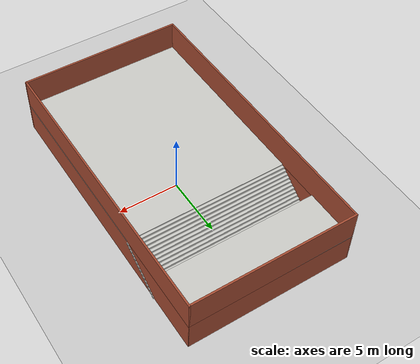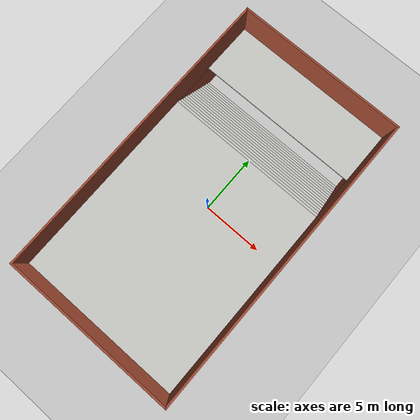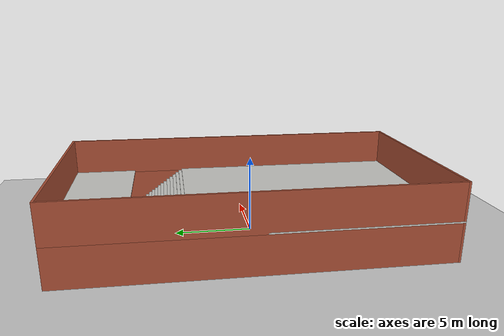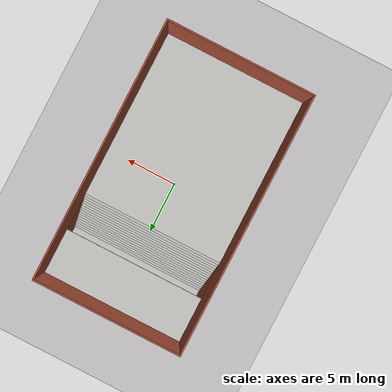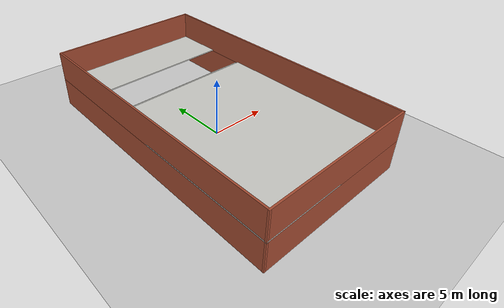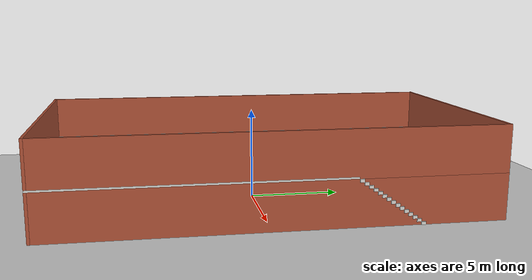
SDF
<sdf version="1.6">
 <world name="default">
  <light name="sun" type="directional">
   <pose>0 0 10 0 -0 0</pose>
   <diffuse>0.8 0.8 0.8 1</diffuse>
   <specular>0.2 0.2 0.2 1</specular>
   <attenuation>
    <range>1000</range>
    <constant>0.9</constant>
    <linear>0.01</linear>
    <quadratic>0.001</quadratic>
   </attenuation>
   <direction>-0.5 0.1 -0.9</direction>
  </light>
  <model name="ground_plane">
   <static>1</static>
   <link name="link">
    <collision name="collision">
     <geometry><plane><normal>0 0 1</normal><size>100 100</size></plane></geometry>
     <surface><friction><ode><mu>100</mu><mu2>50</mu2></ode></friction></surface>
    </collision>
    <visual name="visual">
     <cast_shadows>0</cast_shadows>
     <geometry><plane><normal>0 0 1</normal><size>100 100</size></plane></geometry>
     <material>
      <script><uri>file://media/materials/scripts/gazebo.material</uri><name>Gazebo/Grey</name></script>
     </material>
    </visual>
   </link>
  </model>
  <gravity>0 0 -9.8</gravity>
  <magnetic_field>6e-06 2.3e-05 -4.2e-05</magnetic_field>
  <atmosphere type="adiabatic"/>
  <physics name="default_physics" default="0" type="ode">
   <max_step_size>0.001</max_step_size>
   <real_time_factor>1</real_time_factor>
   <real_time_update_rate>1000</real_time_update_rate>
  </physics>
  <scene><ambient>0.4 0.4 0.4 1</ambient><background>0.7 0.7 0.7 1</background><shadows>1</shadows></scene>
  <audio><device>default</device></audio>
  <spherical_coordinates>
   <surface_model>EARTH_WGS84</surface_model>
   <latitude_deg>0</latitude_deg>
   <longitude_deg>0</longitude_deg>
   <elevation>0</elevation>
   <heading_deg>0</heading_deg>
  </spherical_coordinates>
  <model name="canteen">
   <pose>-0.051317 0.326516 0 0 -0 0</pose>
   <link name="Floor_1">
    <pose>-0.032569 -0 2.5 0 -0 0</pose>
    <visual name="Floor_1_Visual_0">
     <pose>-6.71743 0 0.05 0 -0 0</pose>
     <geometry><box><size>0.065139 23.75 0.1</size></box></geometry>
     <material>
      <script><uri>file://media/materials/scripts/gazebo.material</uri><name>Gazebo/CeilingTiled</name></script>
      <ambient>1 1 1 1</ambient>
     </material>
     <meta><layer>1</layer></meta>
    </visual>
    <collision name="Floor_1_Collision_0">
     <geometry><box><size>0.065139 23.75 0.1</size></box></geometry>
     <pose>-6.71743 0 0.05 0 -0 0</pose>
    </collision>
    <visual name="Floor_1_Visual_1">
     <pose>0.03257 -3.93755 0.05 0 -0 0</pose>
     <geometry><box><size>13.4349 15.8749 0.1</size></box></geometry>
     <material>
      <script><uri>file://media/materials/scripts/gazebo.material</uri><name>Gazebo/CeilingTiled</name></script>
      <ambient>1 1 1 1</ambient>
     </material>
     <meta><layer>1</layer></meta>
    </visual>
    <collision name="Floor_1_Collision_1">
     <geometry><box><size>13.4349 15.8749 0.1</size></box></geometry>
     <pose>0.03257 -3.93755 0.05 0 -0 0</pose>
    </collision>
    <visual name="Floor_1_Visual_2">
     <pose>0.03257 9.68745 0.05 0 -0 0</pose>
     <geometry><box><size>13.4349 4.3751 0.1</size></box></geometry>
     <material>
      <script><uri>file://media/materials/scripts/gazebo.material</uri><name>Gazebo/CeilingTiled</name></script>
      <ambient>1 1 1 1</ambient>
     </material>
     <meta><layer>1</layer></meta>
    </visual>
    <collision name="Floor_1_Collision_2">
     <geometry><box><size>13.4349 4.3751 0.1</size></box></geometry>
     <pose>0.03257 9.68745 0.05 0 -0 0</pose>
    </collision>
   </link>
   <link name="Stairs_4">
    <visual name="Stairs_4_Visual_0">
     <pose>0.03257 7.38324 0.083333 0 -0 0</pose>
     <geometry><box><size>13.5 0.233333 0.166667</size></box></geometry>
     <material>
      <script><uri>file://media/materials/scripts/gazebo.material</uri><name>Gazebo/CeilingTiled</name></script>
      <ambient>1 1 1 1</ambient>
     </material>
     <meta><layer>0</layer></meta>
    </visual>
    <collision name="Stairs_4_Collision_0">
     <geometry><box><size>13.5 0.233333 0.166667</size></box></geometry>
     <pose>0.03257 7.38324 0.083333 0 -0 0</pose>
    </collision>
    <visual name="Stairs_4_Visual_1">
     <pose>0.03257 7.1499 0.25 0 -0 0</pose>
     <geometry><box><size>13.5 0.233333 0.166667</size></box></geometry>
     <material>
      <script><uri>file://media/materials/scripts/gazebo.material</uri><name>Gazebo/CeilingTiled</name></script>
      <ambient>1 1 1 1</ambient>
     </material>
     <meta><layer>0</layer></meta>
    </visual>
    <collision name="Stairs_4_Collision_1">
     <geometry><box><size>13.5 0.233333 0.166667</size></box></geometry>
     <pose>0.03257 7.1499 0.25 0 -0 0</pose>
    </collision>
    <visual name="Stairs_4_Visual_2">
     <pose>0.03257 6.91657 0.416667 0 -0 0</pose>
     <geometry><box><size>13.5 0.233333 0.166667</size></box></geometry>
     <material>
      <script><uri>file://media/materials/scripts/gazebo.material</uri><name>Gazebo/CeilingTiled</name></script>
      <ambient>1 1 1 1</ambient>
     </material>
     <meta><layer>0</layer></meta>
    </visual>
    <collision name="Stairs_4_Collision_2">
     <geometry><box><size>13.5 0.233333 0.166667</size></box></geometry>
     <pose>0.03257 6.91657 0.416667 0 -0 0</pose>
    </collision>
    <visual name="Stairs_4_Visual_3">
     <pose>0.03257 6.68324 0.583333 0 -0 0</pose>
     <geometry><box><size>13.5 0.233333 0.166667</size></box></geometry>
     <material>
      <script><uri>file://media/materials/scripts/gazebo.material</uri><name>Gazebo/CeilingTiled</name></script>
      <ambient>1 1 1 1</ambient>
     </material>
     <meta><layer>0</layer></meta>
    </visual>
    <collision name="Stairs_4_Collision_3">
     <geometry><box><size>13.5 0.233333 0.166667</size></box></geometry>
     <pose>0.03257 6.68324 0.583333 0 -0 0</pose>
    </collision>
    <visual name="Stairs_4_Visual_4">
     <pose>0.03257 6.4499 0.75 0 -0 0</pose>
     <geometry><box><size>13.5 0.233333 0.166667</size></box></geometry>
     <material>
      <script><uri>file://media/materials/scripts/gazebo.material</uri><name>Gazebo/CeilingTiled</name></script>
      <ambient>1 1 1 1</ambient>
     </material>
     <meta><layer>0</layer></meta>
    </visual>
    <collision name="Stairs_4_Collision_4">
     <geometry><box><size>13.5 0.233333 0.166667</size></box></geometry>
     <pose>0.03257 6.4499 0.75 0 -0 0</pose>
    </collision>
    <visual name="Stairs_4_Visual_5">
     <pose>0.03257 6.21657 0.916667 0 -0 0</pose>
     <geometry><box><size>13.5 0.233333 0.166667</size></box></geometry>
     <material>
      <script><uri>file://media/materials/scripts/gazebo.material</uri><name>Gazebo/CeilingTiled</name></script>
      <ambient>1 1 1 1</ambient>
     </material>
     <meta><layer>0</layer></meta>
    </visual>
    <collision name="Stairs_4_Collision_5">
     <geometry><box><size>13.5 0.233333 0.166667</size></box></geometry>
     <pose>0.03257 6.21657 0.916667 0 -0 0</pose>
    </collision>
    <visual name="Stairs_4_Visual_6">
     <pose>0.03257 5.98324 1.08333 0 -0 0</pose>
     <geometry><box><size>13.5 0.233333 0.166667</size></box></geometry>
     <material>
      <script><uri>file://media/materials/scripts/gazebo.material</uri><name>Gazebo/CeilingTiled</name></script>
      <ambient>1 1 1 1</ambient>
     </material>
     <meta><layer>0</layer></meta>
    </visual>
    <collision name="Stairs_4_Collision_6">
     <geometry><box><size>13.5 0.233333 0.166667</size></box></geometry>
     <pose>0.03257 5.98324 1.08333 0 -0 0</pose>
    </collision>
    <visual name="Stairs_4_Visual_7">
     <pose>0.03257 5.7499 1.25 0 -0 0</pose>
     <geometry><box><size>13.5 0.233333 0.166667</size></box></geometry>
     <material>
      <script><uri>file://media/materials/scripts/gazebo.material</uri><name>Gazebo/CeilingTiled</name></script>
      <ambient>1 1 1 1</ambient>
     </material>
     <meta><layer>0</layer></meta>
    </visual>
    <collision name="Stairs_4_Collision_7">
     <geometry><box><size>13.5 0.233333 0.166667</size></box></geometry>
     <pose>0.03257 5.7499 1.25 0 -0 0</pose>
    </collision>
    <visual name="Stairs_4_Visual_8">
     <pose>0.03257 5.51657 1.41667 0 -0 0</pose>
     <geometry><box><size>13.5 0.233333 0.166667</size></box></geometry>
     <material>
      <script><uri>file://media/materials/scripts/gazebo.material</uri><name>Gazebo/CeilingTiled</name></script>
      <ambient>1 1 1 1</ambient>
     </material>
     <meta><layer>0</layer></meta>
    </visual>
    <collision name="Stairs_4_Collision_8">
     <geometry><box><size>13.5 0.233333 0.166667</size></box></geometry>
     <pose>0.03257 5.51657 1.41667 0 -0 0</pose>
    </collision>
    <visual name="Stairs_4_Visual_9">
     <pose>0.03257 5.28324 1.58333 0 -0 0</pose>
     <geometry><box><size>13.5 0.233333 0.166667</size></box></geometry>
     <material>
      <script><uri>file://media/materials/scripts/gazebo.material</uri><name>Gazebo/CeilingTiled</name></script>
      <ambient>1 1 1 1</ambient>
     </material>
     <meta><layer>0</layer></meta>
    </visual>
    <collision name="Stairs_4_Collision_9">
     <geometry><box><size>13.5 0.233333 0.166667</size></box></geometry>
     <pose>0.03257 5.28324 1.58333 0 -0 0</pose>
    </collision>
    <visual name="Stairs_4_Visual_10">
     <pose>0.03257 5.0499 1.75 0 -0 0</pose>
     <geometry><box><size>13.5 0.233333 0.166667</size></box></geometry>
     <material>
      <script><uri>file://media/materials/scripts/gazebo.material</uri><name>Gazebo/CeilingTiled</name></script>
      <ambient>1 1 1 1</ambient>
     </material>
     <meta><layer>0</layer></meta>
    </visual>
    <collision name="Stairs_4_Collision_10">
     <geometry><box><size>13.5 0.233333 0.166667</size></box></geometry>
     <pose>0.03257 5.0499 1.75 0 -0 0</pose>
    </collision>
    <visual name="Stairs_4_Visual_11">
     <pose>0.03257 4.81657 1.91667 0 -0 0</pose>
     <geometry><box><size>13.5 0.233333 0.166667</size></box></geometry>
     <material>
      <script><uri>file://media/materials/scripts/gazebo.material</uri><name>Gazebo/CeilingTiled</name></script>
      <ambient>1 1 1 1</ambient>
     </material>
     <meta><layer>0</layer></meta>
    </visual>
    <collision name="Stairs_4_Collision_11">
     <geometry><box><size>13.5 0.233333 0.166667</size></box></geometry>
     <pose>0.03257 4.81657 1.91667 0 -0 0</pose>
    </collision>
    <visual name="Stairs_4_Visual_12">
     <pose>0.03257 4.58324 2.08333 0 -0 0</pose>
     <geometry><box><size>13.5 0.233333 0.166667</size></box></geometry>
     <material>
      <script><uri>file://media/materials/scripts/gazebo.material</uri><name>Gazebo/CeilingTiled</name></script>
      <ambient>1 1 1 1</ambient>
     </material>
     <meta><layer>0</layer></meta>
    </visual>
    <collision name="Stairs_4_Collision_12">
     <geometry><box><size>13.5 0.233333 0.166667</size></box></geometry>
     <pose>0.03257 4.58324 2.08333 0 -0 0</pose>
    </collision>
    <visual name="Stairs_4_Visual_13">
     <pose>0.03257 4.3499 2.25 0 -0 0</pose>
     <geometry><box><size>13.5 0.233333 0.166667</size></box></geometry>
     <material>
      <script><uri>file://media/materials/scripts/gazebo.material</uri><name>Gazebo/CeilingTiled</name></script>
      <ambient>1 1 1 1</ambient>
     </material>
     <meta><layer>0</layer></meta>
    </visual>
    <collision name="Stairs_4_Collision_13">
     <geometry><box><size>13.5 0.233333 0.166667</size></box></geometry>
     <pose>0.03257 4.3499 2.25 0 -0 0</pose>
    </collision>
    <visual name="Stairs_4_Visual_14">
     <pose>0.03257 4.11657 2.41667 0 -0 0</pose>
     <geometry><box><size>13.5 0.233333 0.166667</size></box></geometry>
     <material>
      <script><uri>file://media/materials/scripts/gazebo.material</uri><name>Gazebo/CeilingTiled</name></script>
      <ambient>1 1 1 1</ambient>
     </material>
     <meta><layer>0</layer></meta>
    </visual>
    <collision name="Stairs_4_Collision_14">
     <geometry><box><size>13.5 0.233333 0.166667</size></box></geometry>
     <pose>0.03257 4.11657 2.41667 0 -0 0</pose>
    </collision>
   </link>
   <link name="Wall_21">
    <collision name="Wall_21_Collision">
     <geometry><box><size>13.5 0.15 2.5</size></box></geometry>
     <pose>0 0 1.25 0 -0 0</pose>
    </collision>
    <visual name="Wall_21_Visual">
     <pose>0 0 1.25 0 -0 0</pose>
     <geometry><box><size>13.5 0.15 2.5</size></box></geometry>
     <material>
      <script><uri>file://media/materials/scripts/gazebo.material</uri><name>Gazebo/Bricks</name></script>
      <ambient>1 1 1 1</ambient>
     </material>
     <meta><layer>0</layer></meta>
    </visual>
    <pose>-0.032569 11.8 0 0 -0 0</pose>
   </link>
   <link name="Wall_22">
    <collision name="Wall_22_Collision">
     <geometry><box><size>23.75 0.15 2.5</size></box></geometry>
     <pose>0 0 1.25 0 -0 0</pose>
    </collision>
    <visual name="Wall_22_Visual">
     <pose>0 0 1.25 0 -0 0</pose>
     <geometry><box><size>23.75 0.15 2.5</size></box></geometry>
     <material>
      <script><uri>file://media/materials/scripts/gazebo.material</uri><name>Gazebo/Bricks</name></script>
      <ambient>1 1 1 1</ambient>
     </material>
     <meta><layer>0</layer></meta>
    </visual>
    <pose>6.64243 -0 0 0 -0 -1.5708</pose>
   </link>
   <link name="Wall_23">
    <collision name="Wall_23_Collision">
     <geometry><box><size>13.5 0.15 2.5</size></box></geometry>
     <pose>0 0 1.25 0 -0 0</pose>
    </collision>
    <visual name="Wall_23_Visual">
     <pose>0 0 1.25 0 -0 0</pose>
     <geometry><box><size>13.5 0.15 2.5</size></box></geometry>
     <material>
      <script><uri>file://media/materials/scripts/gazebo.material</uri><name>Gazebo/Bricks</name></script>
      <ambient>1 1 1 1</ambient>
     </material>
     <meta><layer>0</layer></meta>
    </visual>
    <pose>-0.032569 -11.8 0 0 -0 3.14159</pose>
   </link>
   <link name="Wall_24">
    <collision name="Wall_24_Collision">
     <geometry><box><size>23.75 0.15 2.5</size></box></geometry>
     <pose>0 0 1.25 0 -0 0</pose>
    </collision>
    <visual name="Wall_24_Visual">
     <pose>0 0 1.25 0 -0 0</pose>
     <geometry><box><size>23.75 0.15 2.5</size></box></geometry>
     <material>
      <script><uri>file://media/materials/scripts/gazebo.material</uri><name>Gazebo/Bricks</name></script>
      <ambient>1 1 1 1</ambient>
     </material>
     <meta><layer>0</layer></meta>
    </visual>
    <pose>-6.70757 -0 0 0 -0 1.5708</pose>
   </link>
   <link name="Wall_26">
    <collision name="Wall_26_Collision">
     <geometry><box><size>13.5 0.15 2.5</size></box></geometry>
     <pose>0 0 1.25 0 -0 0</pose>
    </collision>
    <visual name="Wall_26_Visual">
     <pose>0 0 1.25 0 -0 0</pose>
     <geometry><box><size>13.5 0.15 2.5</size></box></geometry>
     <material>
      <script><uri>file://media/materials/scripts/gazebo.material</uri><name>Gazebo/Bricks</name></script>
      <ambient>1 1 1 1</ambient>
     </material>
     <meta><layer>1</layer></meta>
    </visual>
    <pose>-0.032569 11.8 2.5 0 -0 0</pose>
   </link>
   <link name="Wall_27">
    <collision name="Wall_27_Collision">
     <geometry><box><size>23.75 0.15 2.5</size></box></geometry>
     <pose>0 0 1.25 0 -0 0</pose>
    </collision>
    <visual name="Wall_27_Visual">
     <pose>0 0 1.25 0 -0 0</pose>
     <geometry><box><size>23.75 0.15 2.5</size></box></geometry>
     <material>
      <script><uri>file://media/materials/scripts/gazebo.material</uri><name>Gazebo/Bricks</name></script>
      <ambient>1 1 1 1</ambient>
     </material>
     <meta><layer>1</layer></meta>
    </visual>
    <pose>6.64243 -0 2.5 0 -0 -1.5708</pose>
   </link>
   <link name="Wall_28">
    <collision name="Wall_28_Collision">
     <geometry><box><size>13.5 0.15 2.5</size></box></geometry>
     <pose>0 0 1.25 0 -0 0</pose>
    </collision>
    <visual name="Wall_28_Visual">
     <pose>0 0 1.25 0 -0 0</pose>
     <geometry><box><size>13.5 0.15 2.5</size></box></geometry>
     <material>
      <script><uri>file://media/materials/scripts/gazebo.material</uri><name>Gazebo/Bricks</name></script>
      <ambient>1 1 1 1</ambient>
     </material>
     <meta><layer>1</layer></meta>
    </visual>
    <pose>-0.032569 -11.8 2.5 0 -0 3.14159</pose>
   </link>
   <link name="Wall_29">
    <collision name="Wall_29_Collision">
     <geometry><box><size>23.75 0.15 2.5</size></box></geometry>
     <pose>0 0 1.25 0 -0 0</pose>
    </collision>
    <visual name="Wall_29_Visual">
     <pose>0 0 1.25 0 -0 0</pose>
     <geometry><box><size>23.75 0.15 2.5</size></box></geometry>
     <material>
      <script><uri>file://media/materials/scripts/gazebo.material</uri><name>Gazebo/Bricks</name></script>
      <ambient>1 1 1 1</ambient>
     </material>
     <meta><layer>1</layer></meta>
    </visual>
    <pose>-6.70757 -0 2.5 0 -0 1.5708</pose>
   </link>
   <static>1</static>
  </model>
 </world>
</sdf>
